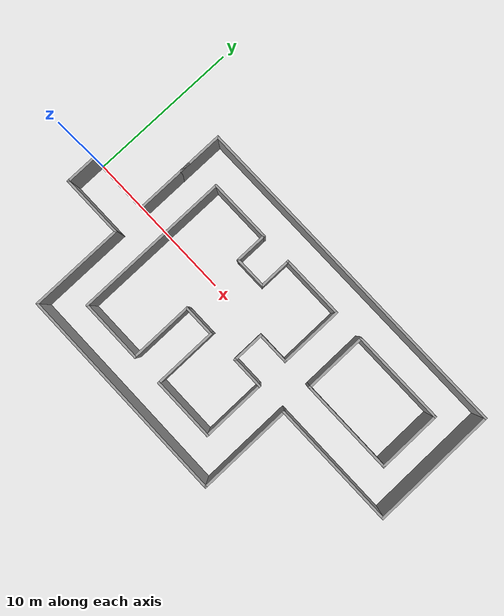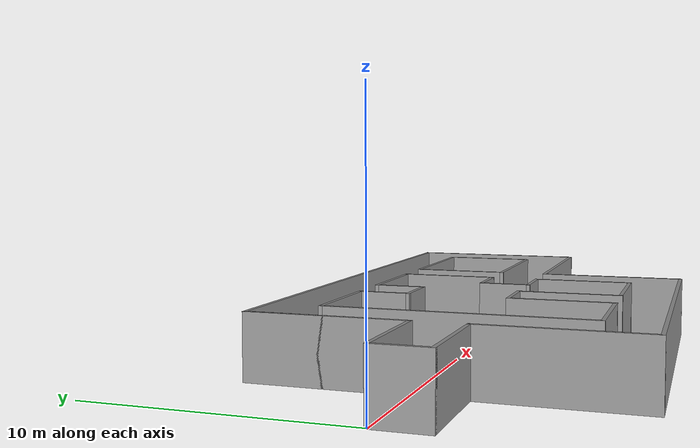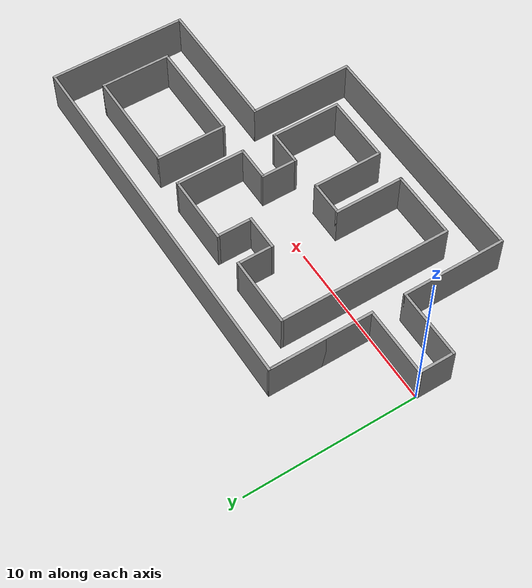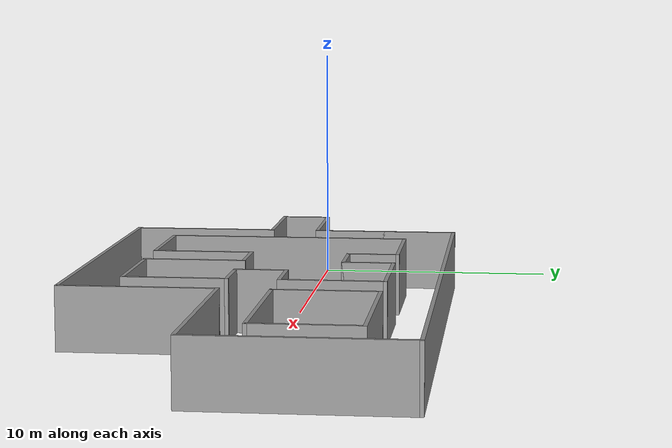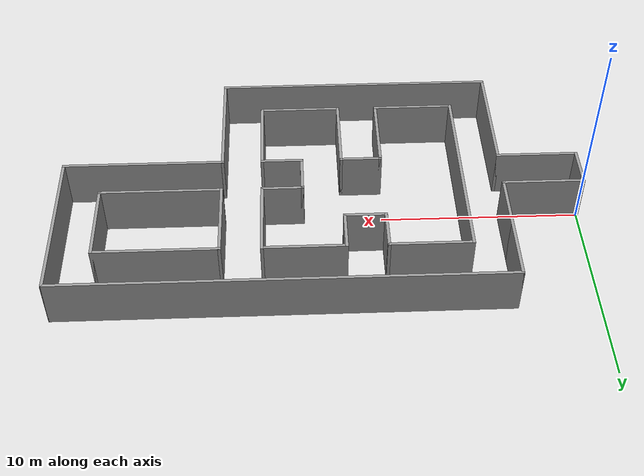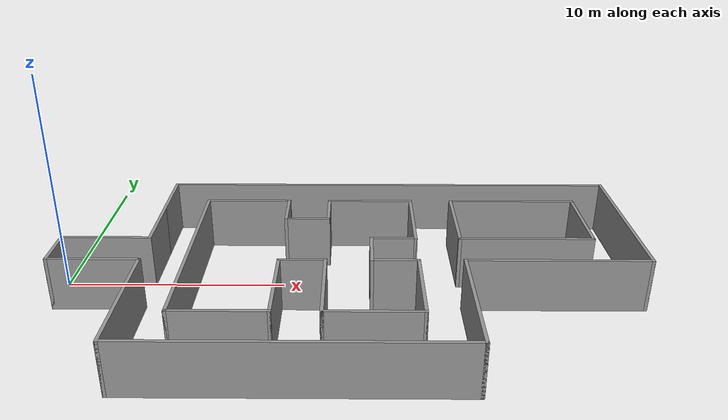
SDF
<?xml version='1.0'?>
<sdf version='1.6'>
  <model name='FullScaleRobotMap'>
    <pose frame=''>13 -1 0 0 -0 0</pose>
    <link name='Wall_13'>
      <collision name='Wall_13_Collision'>
        <geometry>
          <box>
            <size>4.15 0.15 2.5</size>
          </box>
        </geometry>
        <pose frame=''>0 0 1.25 0 -0 0</pose>
      </collision>
      <visual name='Wall_13_Visual'>
        <pose frame=''>0 0 1.25 0 -0 0</pose>
        <geometry>
          <box>
            <size>4.15 0.15 2.5</size>
          </box>
        </geometry>
        <material>
          <script>
            <uri>file://media/materials/scripts/gazebo.material</uri>
            <name>Gazebo/Grey</name>
          </script>
          <ambient>1 1 1 1</ambient>
        </material>
        <meta>
          <layer>0</layer>
        </meta>
      </visual>
      <pose frame=''>-11 -1 0 0 -0 0</pose>
    </link>
    <link name='Wall_15'>
      <collision name='Wall_15_Collision'>
        <geometry>
          <box>
            <size>6.15 0.15 2.5</size>
          </box>
        </geometry>
        <pose frame=''>0 0 1.25 0 -0 0</pose>
      </collision>
      <visual name='Wall_15_Visual'>
        <pose frame=''>0 0 1.25 0 -0 0</pose>
        <geometry>
          <box>
            <size>6.15 0.15 2.5</size>
          </box>
        </geometry>
        <material>
          <script>
            <uri>file://media/materials/scripts/gazebo.material</uri>
            <name>Gazebo/Grey</name>
          </script>
          <ambient>1 1 1 1</ambient>
        </material>
        <meta>
          <layer>0</layer>
        </meta>
      </visual>
      <pose frame=''>-9 -4 0 0 -0 -1.5708</pose>
    </link>
    <link name='Wall_17'>
      <collision name='Wall_17_Collision'>
        <geometry>
          <box>
            <size>14.15 0.15 2.5</size>
          </box>
        </geometry>
        <pose frame=''>0 0 1.25 0 -0 0</pose>
      </collision>
      <visual name='Wall_17_Visual'>
        <pose frame=''>0 0 1.25 0 -0 0</pose>
        <geometry>
          <box>
            <size>14.15 0.15 2.5</size>
          </box>
        </geometry>
        <material>
          <script>
            <uri>file://media/materials/scripts/gazebo.material</uri>
            <name>Gazebo/Grey</name>
          </script>
          <ambient>1 1 1 1</ambient>
        </material>
        <meta>
          <layer>0</layer>
        </meta>
      </visual>
      <pose frame=''>-2 -7 0 0 -0 0</pose>
    </link>
    <link name='Wall_19'>
      <collision name='Wall_19_Collision'>
        <geometry>
          <box>
            <size>6.15 0.15 2.5</size>
          </box>
        </geometry>
        <pose frame=''>0 0 1.25 0 -0 0</pose>
      </collision>
      <visual name='Wall_19_Visual'>
        <pose frame=''>0 0 1.25 0 -0 0</pose>
        <geometry>
          <box>
            <size>6.15 0.15 2.5</size>
          </box>
        </geometry>
        <material>
          <script>
            <uri>file://media/materials/scripts/gazebo.material</uri>
            <name>Gazebo/Grey</name>
          </script>
          <ambient>1 1 1 1</ambient>
        </material>
        <meta>
          <layer>0</layer>
        </meta>
      </visual>
      <pose frame=''>5 -4 0 0 -0 1.5708</pose>
    </link>
    <link name='Wall_21'>
      <collision name='Wall_21_Collision'>
        <geometry>
          <box>
            <size>8.15 0.15 2.5</size>
          </box>
        </geometry>
        <pose frame=''>0 0 1.25 0 -0 0</pose>
      </collision>
      <visual name='Wall_21_Visual'>
        <pose frame=''>0 0 1.25 0 -0 0</pose>
        <geometry>
          <box>
            <size>8.15 0.15 2.5</size>
          </box>
        </geometry>
        <material>
          <script>
            <uri>file://media/materials/scripts/gazebo.material</uri>
            <name>Gazebo/Grey</name>
          </script>
          <ambient>1 1 1 1</ambient>
        </material>
        <meta>
          <layer>0</layer>
        </meta>
      </visual>
      <pose frame=''>9 -1 0 0 -0 0</pose>
    </link>
    <link name='Wall_23'>
      <collision name='Wall_23_Collision'>
        <geometry>
          <box>
            <size>8.15 0.15 2.5</size>
          </box>
        </geometry>
        <pose frame=''>0 0 1.25 0 -0 0</pose>
      </collision>
      <visual name='Wall_23_Visual'>
        <pose frame=''>0 0 1.25 0 -0 0</pose>
        <geometry>
          <box>
            <size>8.15 0.15 2.5</size>
          </box>
        </geometry>
        <material>
          <script>
            <uri>file://media/materials/scripts/gazebo.material</uri>
            <name>Gazebo/Grey</name>
          </script>
          <ambient>1 1 1 1</ambient>
        </material>
        <meta>
          <layer>0</layer>
        </meta>
      </visual>
      <pose frame=''>13 3 0 0 -0 1.5708</pose>
    </link>
    <link name='Wall_25'>
      <collision name='Wall_25_Collision'>
        <geometry>
          <box>
            <size>6.15 0.15 2.5</size>
          </box>
        </geometry>
        <pose frame=''>0 0 1.25 0 -0 0</pose>
      </collision>
      <visual name='Wall_25_Visual'>
        <pose frame=''>0 0 1.25 0 -0 0</pose>
        <geometry>
          <box>
            <size>6.15 0.15 2.5</size>
          </box>
        </geometry>
        <material>
          <script>
            <uri>file://media/materials/scripts/gazebo.material</uri>
            <name>Gazebo/Grey</name>
          </script>
          <ambient>1 1 1 1</ambient>
        </material>
        <meta>
          <layer>0</layer>
        </meta>
      </visual>
      <pose frame=''>-9 4 0 0 -0 -1.5708</pose>
    </link>
    <link name='Wall_26'>
      <collision name='Wall_26_Collision'>
        <geometry>
          <box>
            <size>6.15 0.15 2.5</size>
          </box>
        </geometry>
        <pose frame=''>0 0 1.25 0 -0 0</pose>
      </collision>
      <visual name='Wall_26_Visual'>
        <pose frame=''>0 0 1.25 0 -0 0</pose>
        <geometry>
          <box>
            <size>6.15 0.15 2.5</size>
          </box>
        </geometry>
        <material>
          <script>
            <uri>file://media/materials/scripts/gazebo.material</uri>
            <name>Gazebo/Grey</name>
          </script>
          <ambient>1 1 1 1</ambient>
        </material>
        <meta>
          <layer>0</layer>
        </meta>
      </visual>
      <pose frame=''>-9 4 0 0 -0 1.5708</pose>
    </link>
    <link name='Wall_28'>
      <collision name='Wall_28_Collision'>
        <geometry>
          <box>
            <size>4.15 0.15 2.5</size>
          </box>
        </geometry>
        <pose frame=''>0 0 1.25 0 -0 0</pose>
      </collision>
      <visual name='Wall_28_Visual'>
        <pose frame=''>0 0 1.25 0 -0 0</pose>
        <geometry>
          <box>
            <size>4.15 0.15 2.5</size>
          </box>
        </geometry>
        <material>
          <script>
            <uri>file://media/materials/scripts/gazebo.material</uri>
            <name>Gazebo/Grey</name>
          </script>
          <ambient>1 1 1 1</ambient>
        </material>
        <meta>
          <layer>0</layer>
        </meta>
      </visual>
      <pose frame=''>-11 1 0 0 -0 3.14159</pose>
    </link>
    <link name='Wall_30'>
      <collision name='Wall_30_Collision'>
        <geometry>
          <box>
            <size>22.15 0.15 2.5</size>
          </box>
        </geometry>
        <pose frame=''>0 0 1.25 0 -0 0</pose>
      </collision>
      <visual name='Wall_30_Visual'>
        <pose frame=''>0 0 1.25 0 -0 0</pose>
        <geometry>
          <box>
            <size>22.15 0.15 2.5</size>
          </box>
        </geometry>
        <material>
          <script>
            <uri>file://media/materials/scripts/gazebo.material</uri>
            <name>Gazebo/Grey</name>
          </script>
          <ambient>1 1 1 1</ambient>
        </material>
        <meta>
          <layer>0</layer>
        </meta>
      </visual>
      <pose frame=''>2 7 0 0 -0 0</pose>
    </link>
    <link name='Wall_32'>
      <collision name='Wall_32_Collision'>
        <geometry>
          <box>
            <size>4.15 0.15 2.5</size>
          </box>
        </geometry>
        <pose frame=''>0 0 1.25 0 -0 0</pose>
      </collision>
      <visual name='Wall_32_Visual'>
        <pose frame=''>0 0 1.25 0 -0 0</pose>
        <geometry>
          <box>
            <size>4.15 0.15 2.5</size>
          </box>
        </geometry>
        <material>
          <script>
            <uri>file://media/materials/scripts/gazebo.material</uri>
            <name>Gazebo/Grey</name>
          </script>
          <ambient>1 1 1 1</ambient>
        </material>
        <meta>
          <layer>0</layer>
        </meta>
      </visual>
      <pose frame=''>-5 -5 0 0 -0 0</pose>
    </link>
    <link name='Wall_34'>
      <collision name='Wall_34_Collision'>
        <geometry>
          <box>
            <size>4.15 0.15 2.5</size>
          </box>
        </geometry>
        <pose frame=''>0 0 1.25 0 -0 0</pose>
      </collision>
      <visual name='Wall_34_Visual'>
        <pose frame=''>0 0 1.25 0 -0 0</pose>
        <geometry>
          <box>
            <size>4.15 0.15 2.5</size>
          </box>
        </geometry>
        <material>
          <script>
            <uri>file://media/materials/scripts/gazebo.material</uri>
            <name>Gazebo/Grey</name>
          </script>
          <ambient>1 1 1 1</ambient>
        </material>
        <meta>
          <layer>0</layer>
        </meta>
      </visual>
      <pose frame=''>-3 -3 0 0 -0 1.5708</pose>
    </link>
    <link name='Wall_36'>
      <collision name='Wall_36_Collision'>
        <geometry>
          <box>
            <size>2.15 0.15 2.5</size>
          </box>
        </geometry>
        <pose frame=''>0 0 1.25 0 -0 0</pose>
      </collision>
      <visual name='Wall_36_Visual'>
        <pose frame=''>0 0 1.25 0 -0 0</pose>
        <geometry>
          <box>
            <size>2.15 0.15 2.5</size>
          </box>
        </geometry>
        <material>
          <script>
            <uri>file://media/materials/scripts/gazebo.material</uri>
            <name>Gazebo/Grey</name>
          </script>
          <ambient>1 1 1 1</ambient>
        </material>
        <meta>
          <layer>0</layer>
        </meta>
      </visual>
      <pose frame=''>-2 -1 0 0 -0 0</pose>
    </link>
    <link name='Wall_38'>
      <collision name='Wall_38_Collision'>
        <geometry>
          <box>
            <size>4.15 0.15 2.5</size>
          </box>
        </geometry>
        <pose frame=''>0 0 1.25 0 -0 0</pose>
      </collision>
      <visual name='Wall_38_Visual'>
        <pose frame=''>0 0 1.25 0 -0 0</pose>
        <geometry>
          <box>
            <size>4.15 0.15 2.5</size>
          </box>
        </geometry>
        <material>
          <script>
            <uri>file://media/materials/scripts/gazebo.material</uri>
            <name>Gazebo/Grey</name>
          </script>
          <ambient>1 1 1 1</ambient>
        </material>
        <meta>
          <layer>0</layer>
        </meta>
      </visual>
      <pose frame=''>-1 -3 0 0 -0 -1.5708</pose>
    </link>
    <link name='Wall_40'>
      <collision name='Wall_40_Collision'>
        <geometry>
          <box>
            <size>4.15 0.15 2.5</size>
          </box>
        </geometry>
        <pose frame=''>0 0 1.25 0 -0 0</pose>
      </collision>
      <visual name='Wall_40_Visual'>
        <pose frame=''>0 0 1.25 0 -0 0</pose>
        <geometry>
          <box>
            <size>4.15 0.15 2.5</size>
          </box>
        </geometry>
        <material>
          <script>
            <uri>file://media/materials/scripts/gazebo.material</uri>
            <name>Gazebo/Grey</name>
          </script>
          <ambient>1 1 1 1</ambient>
        </material>
        <meta>
          <layer>0</layer>
        </meta>
      </visual>
      <pose frame=''>1 -5 0 0 -0 0</pose>
    </link>
    <link name='Wall_42'>
      <collision name='Wall_42_Collision'>
        <geometry>
          <box>
            <size>4.15 0.15 2.5</size>
          </box>
        </geometry>
        <pose frame=''>0 0 1.25 0 -0 0</pose>
      </collision>
      <visual name='Wall_42_Visual'>
        <pose frame=''>0 0 1.25 0 -0 0</pose>
        <geometry>
          <box>
            <size>4.15 0.15 2.5</size>
          </box>
        </geometry>
        <material>
          <script>
            <uri>file://media/materials/scripts/gazebo.material</uri>
            <name>Gazebo/Grey</name>
          </script>
          <ambient>1 1 1 1</ambient>
        </material>
        <meta>
          <layer>0</layer>
        </meta>
      </visual>
      <pose frame=''>3 -3 0 0 -0 1.5708</pose>
    </link>
    <link name='Wall_44'>
      <collision name='Wall_44_Collision'>
        <geometry>
          <box>
            <size>2.15 0.15 2.5</size>
          </box>
        </geometry>
        <pose frame=''>0 0 1.25 0 -0 0</pose>
      </collision>
      <visual name='Wall_44_Visual'>
        <pose frame=''>0 0 1.25 0 -0 0</pose>
        <geometry>
          <box>
            <size>2.15 0.15 2.5</size>
          </box>
        </geometry>
        <material>
          <script>
            <uri>file://media/materials/scripts/gazebo.material</uri>
            <name>Gazebo/Grey</name>
          </script>
          <ambient>1 1 1 1</ambient>
        </material>
        <meta>
          <layer>0</layer>
        </meta>
      </visual>
      <pose frame=''>2 -1 0 0 -0 3.14159</pose>
    </link>
    <link name='Wall_46'>
      <collision name='Wall_46_Collision'>
        <geometry>
          <box>
            <size>2.15 0.15 2.5</size>
          </box>
        </geometry>
        <pose frame=''>0 0 1.25 0 -0 0</pose>
      </collision>
      <visual name='Wall_46_Visual'>
        <pose frame=''>0 0 1.25 0 -0 0</pose>
        <geometry>
          <box>
            <size>2.15 0.15 2.5</size>
          </box>
        </geometry>
        <material>
          <script>
            <uri>file://media/materials/scripts/gazebo.material</uri>
            <name>Gazebo/Grey</name>
          </script>
          <ambient>1 1 1 1</ambient>
        </material>
        <meta>
          <layer>0</layer>
        </meta>
      </visual>
      <pose frame=''>1 0 0 0 -0 1.5708</pose>
    </link>
    <link name='Wall_48'>
      <collision name='Wall_48_Collision'>
        <geometry>
          <box>
            <size>2.15 0.15 2.5</size>
          </box>
        </geometry>
        <pose frame=''>0 0 1.25 0 -0 0</pose>
      </collision>
      <visual name='Wall_48_Visual'>
        <pose frame=''>0 0 1.25 0 -0 0</pose>
        <geometry>
          <box>
            <size>2.15 0.15 2.5</size>
          </box>
        </geometry>
        <material>
          <script>
            <uri>file://media/materials/scripts/gazebo.material</uri>
            <name>Gazebo/Grey</name>
          </script>
          <ambient>1 1 1 1</ambient>
        </material>
        <meta>
          <layer>0</layer>
        </meta>
      </visual>
      <pose frame=''>2 1 0 0 -0 0</pose>
    </link>
    <link name='Wall_50'>
      <collision name='Wall_50_Collision'>
        <geometry>
          <box>
            <size>4.15 0.15 2.5</size>
          </box>
        </geometry>
        <pose frame=''>0 0 1.25 0 -0 0</pose>
      </collision>
      <visual name='Wall_50_Visual'>
        <pose frame=''>0 0 1.25 0 -0 0</pose>
        <geometry>
          <box>
            <size>4.15 0.15 2.5</size>
          </box>
        </geometry>
        <material>
          <script>
            <uri>file://media/materials/scripts/gazebo.material</uri>
            <name>Gazebo/Grey</name>
          </script>
          <ambient>1 1 1 1</ambient>
        </material>
        <meta>
          <layer>0</layer>
        </meta>
      </visual>
      <pose frame=''>3 3 0 0 -0 1.5708</pose>
    </link>
    <link name='Wall_52'>
      <collision name='Wall_52_Collision'>
        <geometry>
          <box>
            <size>4.15 0.15 2.5</size>
          </box>
        </geometry>
        <pose frame=''>0 0 1.25 0 -0 0</pose>
      </collision>
      <visual name='Wall_52_Visual'>
        <pose frame=''>0 0 1.25 0 -0 0</pose>
        <geometry>
          <box>
            <size>4.15 0.15 2.5</size>
          </box>
        </geometry>
        <material>
          <script>
            <uri>file://media/materials/scripts/gazebo.material</uri>
            <name>Gazebo/Grey</name>
          </script>
          <ambient>1 1 1 1</ambient>
        </material>
        <meta>
          <layer>0</layer>
        </meta>
      </visual>
      <pose frame=''>1 5 0 0 -0 3.14159</pose>
    </link>
    <link name='Wall_54'>
      <collision name='Wall_54_Collision'>
        <geometry>
          <box>
            <size>2.15 0.15 2.5</size>
          </box>
        </geometry>
        <pose frame=''>0 0 1.25 0 -0 0</pose>
      </collision>
      <visual name='Wall_54_Visual'>
        <pose frame=''>0 0 1.25 0 -0 0</pose>
        <geometry>
          <box>
            <size>2.15 0.15 2.5</size>
          </box>
        </geometry>
        <material>
          <script>
            <uri>file://media/materials/scripts/gazebo.material</uri>
            <name>Gazebo/Grey</name>
          </script>
          <ambient>1 1 1 1</ambient>
        </material>
        <meta>
          <layer>0</layer>
        </meta>
      </visual>
      <pose frame=''>-1 4 0 0 -0 -1.5708</pose>
    </link>
    <link name='Wall_56'>
      <collision name='Wall_56_Collision'>
        <geometry>
          <box>
            <size>2.15 0.15 2.5</size>
          </box>
        </geometry>
        <pose frame=''>0 0 1.25 0 -0 0</pose>
      </collision>
      <visual name='Wall_56_Visual'>
        <pose frame=''>0 0 1.25 0 -0 0</pose>
        <geometry>
          <box>
            <size>2.15 0.15 2.5</size>
          </box>
        </geometry>
        <material>
          <script>
            <uri>file://media/materials/scripts/gazebo.material</uri>
            <name>Gazebo/Grey</name>
          </script>
          <ambient>1 1 1 1</ambient>
        </material>
        <meta>
          <layer>0</layer>
        </meta>
      </visual>
      <pose frame=''>-2 3 0 0 -0 3.14159</pose>
    </link>
    <link name='Wall_58'>
      <collision name='Wall_58_Collision'>
        <geometry>
          <box>
            <size>2.15 0.15 2.5</size>
          </box>
        </geometry>
        <pose frame=''>0 0 1.25 0 -0 0</pose>
      </collision>
      <visual name='Wall_58_Visual'>
        <pose frame=''>0 0 1.25 0 -0 0</pose>
        <geometry>
          <box>
            <size>2.15 0.15 2.5</size>
          </box>
        </geometry>
        <material>
          <script>
            <uri>file://media/materials/scripts/gazebo.material</uri>
            <name>Gazebo/Grey</name>
          </script>
          <ambient>1 1 1 1</ambient>
        </material>
        <meta>
          <layer>0</layer>
        </meta>
      </visual>
      <pose frame=''>-3 4 0 0 -0 1.5708</pose>
    </link>
    <link name='Wall_60'>
      <collision name='Wall_60_Collision'>
        <geometry>
          <box>
            <size>4.15 0.15 2.5</size>
          </box>
        </geometry>
        <pose frame=''>0 0 1.25 0 -0 0</pose>
      </collision>
      <visual name='Wall_60_Visual'>
        <pose frame=''>0 0 1.25 0 -0 0</pose>
        <geometry>
          <box>
            <size>4.15 0.15 2.5</size>
          </box>
        </geometry>
        <material>
          <script>
            <uri>file://media/materials/scripts/gazebo.material</uri>
            <name>Gazebo/Grey</name>
          </script>
          <ambient>1 1 1 1</ambient>
        </material>
        <meta>
          <layer>0</layer>
        </meta>
      </visual>
      <pose frame=''>-5 5 0 0 -0 3.14159</pose>
    </link>
    <link name='Wall_62'>
      <collision name='Wall_62_Collision'>
        <geometry>
          <box>
            <size>10.15 0.15 2.5</size>
          </box>
        </geometry>
        <pose frame=''>0 0 1.25 0 -0 0</pose>
      </collision>
      <visual name='Wall_62_Visual'>
        <pose frame=''>0 0 1.25 0 -0 0</pose>
        <geometry>
          <box>
            <size>10.15 0.15 2.5</size>
          </box>
        </geometry>
        <material>
          <script>
            <uri>file://media/materials/scripts/gazebo.material</uri>
            <name>Gazebo/Grey</name>
          </script>
          <ambient>1 1 1 1</ambient>
        </material>
        <meta>
          <layer>0</layer>
        </meta>
      </visual>
      <pose frame=''>-7 0 0 0 -0 -1.5708</pose>
    </link>
    <link name='Wall_64'>
      <collision name='Wall_64_Collision'>
        <geometry>
          <box>
            <size>4.15 0.15 2.5</size>
          </box>
        </geometry>
        <pose frame=''>0 0 1.25 0 -0 0</pose>
      </collision>
      <visual name='Wall_64_Visual'>
        <pose frame=''>0 0 1.25 0 -0 0</pose>
        <geometry>
          <box>
            <size>4.15 0.15 2.5</size>
          </box>
        </geometry>
        <material>
          <script>
            <uri>file://media/materials/scripts/gazebo.material</uri>
            <name>Gazebo/Grey</name>
          </script>
          <ambient>1 1 1 1</ambient>
        </material>
        <meta>
          <layer>0</layer>
        </meta>
      </visual>
      <pose frame=''>5 3 0 0 -0 1.5708</pose>
    </link>
    <link name='Wall_65'>
      <collision name='Wall_65_Collision'>
        <geometry>
          <box>
            <size>6.15 0.15 2.5</size>
          </box>
        </geometry>
        <pose frame=''>0 0 1.25 0 -0 0</pose>
      </collision>
      <visual name='Wall_65_Visual'>
        <pose frame=''>0 0 1.25 0 -0 0</pose>
        <geometry>
          <box>
            <size>6.15 0.15 2.5</size>
          </box>
        </geometry>
        <material>
          <script>
            <uri>file://media/materials/scripts/gazebo.material</uri>
            <name>Gazebo/Grey</name>
          </script>
          <ambient>1 1 1 1</ambient>
        </material>
        <meta>
          <layer>0</layer>
        </meta>
      </visual>
      <pose frame=''>8 5 0 0 -0 0</pose>
    </link>
    <link name='Wall_66'>
      <collision name='Wall_66_Collision'>
        <geometry>
          <box>
            <size>4.15 0.15 2.5</size>
          </box>
        </geometry>
        <pose frame=''>0 0 1.25 0 -0 0</pose>
      </collision>
      <visual name='Wall_66_Visual'>
        <pose frame=''>0 0 1.25 0 -0 0</pose>
        <geometry>
          <box>
            <size>4.15 0.15 2.5</size>
          </box>
        </geometry>
        <material>
          <script>
            <uri>file://media/materials/scripts/gazebo.material</uri>
            <name>Gazebo/Grey</name>
          </script>
          <ambient>1 1 1 1</ambient>
        </material>
        <meta>
          <layer>0</layer>
        </meta>
      </visual>
      <pose frame=''>11 3 0 0 -0 -1.5708</pose>
    </link>
    <link name='Wall_67'>
      <collision name='Wall_67_Collision'>
        <geometry>
          <box>
            <size>6.15 0.15 2.5</size>
          </box>
        </geometry>
        <pose frame=''>0 0 1.25 0 -0 0</pose>
      </collision>
      <visual name='Wall_67_Visual'>
        <pose frame=''>0 0 1.25 0 -0 0</pose>
        <geometry>
          <box>
            <size>6.15 0.15 2.5</size>
          </box>
        </geometry>
        <material>
          <script>
            <uri>file://media/materials/scripts/gazebo.material</uri>
            <name>Gazebo/Grey</name>
          </script>
          <ambient>1 1 1 1</ambient>
        </material>
        <meta>
          <layer>0</layer>
        </meta>
      </visual>
      <pose frame=''>8 1 0 0 -0 3.14159</pose>
    </link>
    <link name='Wall_8'>
      <collision name='Wall_8_Collision'>
        <geometry>
          <box>
            <size>2.15 0.15 2.5</size>
          </box>
        </geometry>
        <pose frame=''>0 0 1.25 0 -0 0</pose>
      </collision>
      <visual name='Wall_8_Visual'>
        <pose frame=''>0 0 1.25 0 -0 0</pose>
        <geometry>
          <box>
            <size>2.15 0.15 2.5</size>
          </box>
        </geometry>
        <material>
          <script>
            <uri>file://media/materials/scripts/gazebo.material</uri>
            <name>Gazebo/Grey</name>
          </script>
          <ambient>1 1 1 1</ambient>
        </material>
        <meta>
          <layer>0</layer>
        </meta>
      </visual>
      <pose frame=''>-13 0 0 0 -0 -1.5708</pose>
    </link>
    <static>1</static>
  </model>
</sdf>
